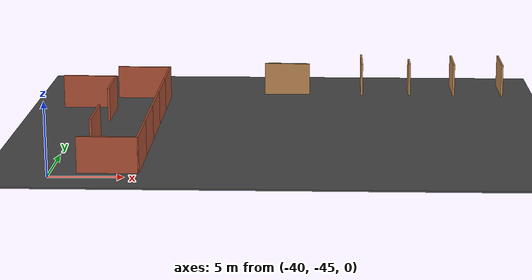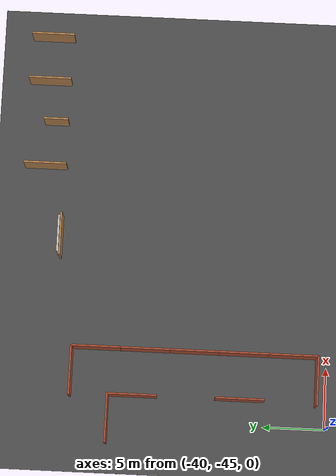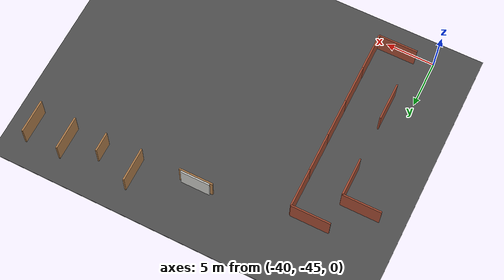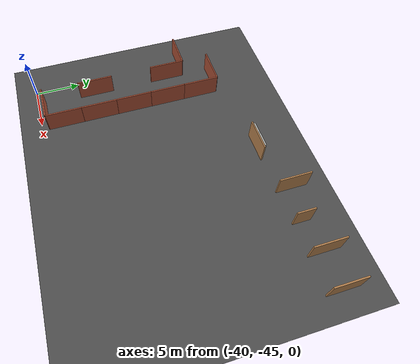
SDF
<sdf version="1.6">
 <world name="default">
  <model name="ground_plane">
   <static>1</static>
   <link name="link">
    <collision name="collision">
     <geometry><plane><normal>0 0 1</normal><size>100 100</size></plane></geometry>
     <surface><friction><ode><mu>100</mu><mu2>50</mu2></ode></friction></surface>
    </collision>
    <visual name="visual">
     <cast_shadows>0</cast_shadows>
     <geometry><plane><normal>0 0 1</normal><size>100 100</size></plane></geometry>
     <material>
      <script><uri>file://media/materials/scripts/gazebo.material</uri><name>Gazebo/Grey</name></script>
     </material>
    </visual>
   </link>
  </model>
  <model name="asphalt_plane">
   <static>1</static>
   <link name="link">
    <collision name="collision"><geometry><box><size>100 100 0.1</size></box></geometry></collision>
    <visual name="visual">
     <cast_shadows>0</cast_shadows>
     <geometry><box><size>100 100 0.1</size></box></geometry>
     <material>
      <script>
       <uri>model://asphalt_plane/materials/scripts</uri>
       <uri>model://asphalt_plane/materials/textures</uri>
       <name>vrc/asphalt</name>
      </script>
     </material>
    </visual>
   </link>
  </model>
  <model name="concrete_wall_6_clone">
   <pose>-25.1114 -22.6438 0 0 -0 1.57079</pose>
   <link name="Wall_0">
    <collision name="Wall_0_Collision">
     <geometry><box><size>3 0.15 2.5</size></box></geometry>
     <pose>0 0 1.25 0 -0 0</pose>
    </collision>
    <visual name="Wall_0_Visual">
     <pose>0 0 1.25 0 -0 0</pose>
     <geometry><box><size>3 0.15 2.5</size></box></geometry>
     <material>
      <script><uri>file://media/materials/scripts/gazebo.material</uri><name>Gazebo/CeilingTiled</name></script>
      <ambient>1 1 1 1</ambient>
     </material>
     <meta><layer>0</layer></meta>
    </visual>
    <pose>0 0 0 0 -0 1.5708</pose>
   </link>
   <static>1</static>
  </model>
  <model name="brick_wall_clone_9">
   <pose>-36.2 -24.2 0 0 -0 0</pose>
   <link name="Wall_0">
    <collision name="Wall_0_Collision">
     <geometry><box><size>4 0.15 2.5</size></box></geometry>
     <pose>0 0 1.25 0 -0 0</pose>
    </collision>
    <visual name="Wall_0_Visual">
     <pose>0 0 1.25 0 -0 0</pose>
     <geometry><box><size>4 0.15 2.5</size></box></geometry>
     <material>
      <script><uri>file://media/materials/scripts/gazebo.material</uri><name>Gazebo/Bricks</name></script>
      <ambient>1 1 1 1</ambient>
     </material>
     <meta><layer>0</layer></meta>
    </visual>
   </link>
   <static>1</static>
  </model>
  <model name="brick_wall_clone_11">
   <pose>-39.9084 -27.3 0 0 -0 0</pose>
   <link name="Wall_0">
    <collision name="Wall_0_Collision">
     <geometry><box><size>4 0.15 2.5</size></box></geometry>
     <pose>0 0 1.25 0 -0 0</pose>
    </collision>
    <visual name="Wall_0_Visual">
     <pose>0 0 1.25 0 -0 0</pose>
     <geometry><box><size>4 0.15 2.5</size></box></geometry>
     <material>
      <script><uri>file://media/materials/scripts/gazebo.material</uri><name>Gazebo/Bricks</name></script>
      <ambient>1 1 1 1</ambient>
     </material>
     <meta><layer>0</layer></meta>
    </visual>
   </link>
   <static>1</static>
  </model>
  <model name="brick_wall_clone_12">
   <pose>-36.2 -44.2 0 0 -0 0</pose>
   <link name="Wall_0">
    <collision name="Wall_0_Collision">
     <geometry><box><size>4 0.15 2.5</size></box></geometry>
     <pose>0 0 1.25 0 -0 0</pose>
    </collision>
    <visual name="Wall_0_Visual">
     <pose>0 0 1.25 0 -0 0</pose>
     <geometry><box><size>4 0.15 2.5</size></box></geometry>
     <material>
      <script><uri>file://media/materials/scripts/gazebo.material</uri><name>Gazebo/Bricks</name></script>
      <ambient>1 1 1 1</ambient>
     </material>
     <meta><layer>0</layer></meta>
    </visual>
   </link>
   <static>1</static>
  </model>
  <model name="brick_wall_1_clone_4">
   <pose>-34.2 -42.2 0 0 -0 1.57079</pose>
   <link name="Wall_0">
    <collision name="Wall_0_Collision">
     <geometry><box><size>4 0.15 2.5</size></box></geometry>
     <pose>0 0 1.25 0 -0 0</pose>
    </collision>
    <visual name="Wall_0_Visual">
     <pose>0 0 1.25 0 -0 0</pose>
     <geometry><box><size>4 0.15 2.5</size></box></geometry>
     <material>
      <script><uri>file://media/materials/scripts/gazebo.material</uri><name>Gazebo/Bricks</name></script>
      <ambient>1 1 1 1</ambient>
     </material>
     <meta><layer>0</layer></meta>
    </visual>
   </link>
   <static>1</static>
  </model>
  <model name="brick_wall_1_clone_5">
   <pose>-34.2 -38.2 0 0 -0 1.57079</pose>
   <link name="Wall_0">
    <collision name="Wall_0_Collision">
     <geometry><box><size>4 0.15 2.5</size></box></geometry>
     <pose>0 0 1.25 0 -0 0</pose>
    </collision>
    <visual name="Wall_0_Visual">
     <pose>0 0 1.25 0 -0 0</pose>
     <geometry><box><size>4 0.15 2.5</size></box></geometry>
     <material>
      <script><uri>file://media/materials/scripts/gazebo.material</uri><name>Gazebo/Bricks</name></script>
      <ambient>1 1 1 1</ambient>
     </material>
     <meta><layer>0</layer></meta>
    </visual>
   </link>
   <static>1</static>
  </model>
  <model name="brick_wall_1_clone_6">
   <pose>-34.2 -34.2 0 0 -0 1.57079</pose>
   <link name="Wall_0">
    <collision name="Wall_0_Collision">
     <geometry><box><size>4 0.15 2.5</size></box></geometry>
     <pose>0 0 1.25 0 -0 0</pose>
    </collision>
    <visual name="Wall_0_Visual">
     <pose>0 0 1.25 0 -0 0</pose>
     <geometry><box><size>4 0.15 2.5</size></box></geometry>
     <material>
      <script><uri>file://media/materials/scripts/gazebo.material</uri><name>Gazebo/Bricks</name></script>
      <ambient>1 1 1 1</ambient>
     </material>
     <meta><layer>0</layer></meta>
    </visual>
   </link>
   <static>1</static>
  </model>
  <model name="brick_wall_1_clone_7">
   <pose>-34.2 -30.2 0 0 -0 1.57079</pose>
   <link name="Wall_0">
    <collision name="Wall_0_Collision">
     <geometry><box><size>4 0.15 2.5</size></box></geometry>
     <pose>0 0 1.25 0 -0 0</pose>
    </collision>
    <visual name="Wall_0_Visual">
     <pose>0 0 1.25 0 -0 0</pose>
     <geometry><box><size>4 0.15 2.5</size></box></geometry>
     <material>
      <script><uri>file://media/materials/scripts/gazebo.material</uri><name>Gazebo/Bricks</name></script>
      <ambient>1 1 1 1</ambient>
     </material>
     <meta><layer>0</layer></meta>
    </visual>
   </link>
   <static>1</static>
  </model>
  <model name="brick_wall_1_clone_8">
   <pose>-34.2 -26.2 0 0 -0 1.57079</pose>
   <link name="Wall_0">
    <collision name="Wall_0_Collision">
     <geometry><box><size>4 0.15 2.5</size></box></geometry>
     <pose>0 0 1.25 0 -0 0</pose>
    </collision>
    <visual name="Wall_0_Visual">
     <pose>0 0 1.25 0 -0 0</pose>
     <geometry><box><size>4 0.15 2.5</size></box></geometry>
     <material>
      <script><uri>file://media/materials/scripts/gazebo.material</uri><name>Gazebo/Bricks</name></script>
      <ambient>1 1 1 1</ambient>
     </material>
     <meta><layer>0</layer></meta>
    </visual>
   </link>
   <static>1</static>
  </model>
  <model name="brick_wall_1_clone_9">
   <pose>-37.9084 -38 0 0 -0 1.57079</pose>
   <link name="Wall_0">
    <collision name="Wall_0_Collision">
     <geometry><box><size>4 0.15 2.5</size></box></geometry>
     <pose>0 0 1.25 0 -0 0</pose>
    </collision>
    <visual name="Wall_0_Visual">
     <pose>0 0 1.25 0 -0 0</pose>
     <geometry><box><size>4 0.15 2.5</size></box></geometry>
     <material>
      <script><uri>file://media/materials/scripts/gazebo.material</uri><name>Gazebo/Bricks</name></script>
      <ambient>1 1 1 1</ambient>
     </material>
     <meta><layer>0</layer></meta>
    </visual>
   </link>
   <static>1</static>
  </model>
  <model name="brick_wall_1_clone_10">
   <pose>-37.9551 -29.3 0 0 -0 1.57079</pose>
   <link name="Wall_0">
    <collision name="Wall_0_Collision">
     <geometry><box><size>4 0.15 2.5</size></box></geometry>
     <pose>0 0 1.25 0 -0 0</pose>
    </collision>
    <visual name="Wall_0_Visual">
     <pose>0 0 1.25 0 -0 0</pose>
     <geometry><box><size>4 0.15 2.5</size></box></geometry>
     <material>
      <script><uri>file://media/materials/scripts/gazebo.material</uri><name>Gazebo/Bricks</name></script>
      <ambient>1 1 1 1</ambient>
     </material>
     <meta><layer>0</layer></meta>
    </visual>
   </link>
   <static>1</static>
  </model>
  <model name="willowgarage_v1_1">
   <pose>-14.3408 -3.86286 0 0 -0 0</pose>
   <link name="Wall_55">
    <collision name="Wall_55_Collision">
     <geometry><box><size>3.5 0.15 2.5</size></box></geometry>
     <pose>0 0 1.25 0 -0 0</pose>
    </collision>
    <visual name="Wall_55_Visual">
     <pose>0 0 1.25 0 -0 0</pose>
     <geometry><box><size>3.5 0.15 2.5</size></box></geometry>
     <material>
      <script><uri>file://media/materials/scripts/gazebo.material</uri><name>Gazebo/Wood</name></script>
      <ambient>1 1 1 1</ambient>
     </material>
     <meta><layer>0</layer></meta>
    </visual>
    <pose>5.96875 -17.4404 0 0 -0 1.5708</pose>
   </link>
   <link name="Wall_57">
    <collision name="Wall_57_Collision">
     <geometry><box><size>3.5 0.15 2.5</size></box></geometry>
     <pose>0 0 1.25 0 -0 0</pose>
    </collision>
    <visual name="Wall_57_Visual">
     <pose>0 0 1.25 0 -0 0</pose>
     <geometry><box><size>3.5 0.15 2.5</size></box></geometry>
     <material>
      <script><uri>file://media/materials/scripts/gazebo.material</uri><name>Gazebo/Wood</name></script>
      <ambient>1 1 1 1</ambient>
     </material>
     <meta><layer>0</layer></meta>
    </visual>
    <pose>2.21555 -17.3789 0 0 -0 1.5708</pose>
   </link>
   <link name="Wall_6">
    <collision name="Wall_6_Collision">
     <geometry><box><size>3.5 0.15 2.5</size></box></geometry>
     <pose>0 0 1.25 0 -0 0</pose>
    </collision>
    <visual name="Wall_6_Visual">
     <pose>0 0 1.25 0 -0 0</pose>
     <geometry><box><size>3.5 0.15 2.5</size></box></geometry>
     <material>
      <script><uri>file://media/materials/scripts/gazebo.material</uri><name>Gazebo/Wood</name></script>
      <ambient>1 1 1 1</ambient>
     </material>
     <meta><layer>0</layer></meta>
    </visual>
    <pose>-10.7818 -18.953 0 0 -0 0</pose>
   </link>
   <link name="Wall_61">
    <collision name="Wall_61_Collision">
     <geometry><box><size>3.5 0.15 2.5</size></box></geometry>
     <pose>0 0 1.25 0 -0 0</pose>
    </collision>
    <visual name="Wall_61_Visual">
     <pose>0 0 1.25 0 -0 0</pose>
     <geometry><box><size>3.5 0.15 2.5</size></box></geometry>
     <material>
      <script><uri>file://media/materials/scripts/gazebo.material</uri><name>Gazebo/Wood</name></script>
      <ambient>1 1 1 1</ambient>
     </material>
     <meta><layer>0</layer></meta>
    </visual>
    <pose>-4.95338 -17.3764 0 0 -0 1.5708</pose>
   </link>
   <link name="Wall_64">
    <collision name="Wall_64_Collision">
     <geometry><box><size>2 0.15 2.5</size></box></geometry>
     <pose>0 0 1.25 0 -0 0</pose>
    </collision>
    <visual name="Wall_64_Visual">
     <pose>0 0 1.25 0 -0 0</pose>
     <geometry><box><size>2 0.15 2.5</size></box></geometry>
     <material>
      <script><uri>file://media/materials/scripts/gazebo.material</uri><name>Gazebo/Wood</name></script>
      <ambient>1 1 1 1</ambient>
     </material>
     <meta><layer>0</layer></meta>
    </visual>
    <pose>-1.23001 -18.0674 0 0 -0 1.5708</pose>
   </link>
   <static>1</static>
  </model>
 </world>
</sdf>
